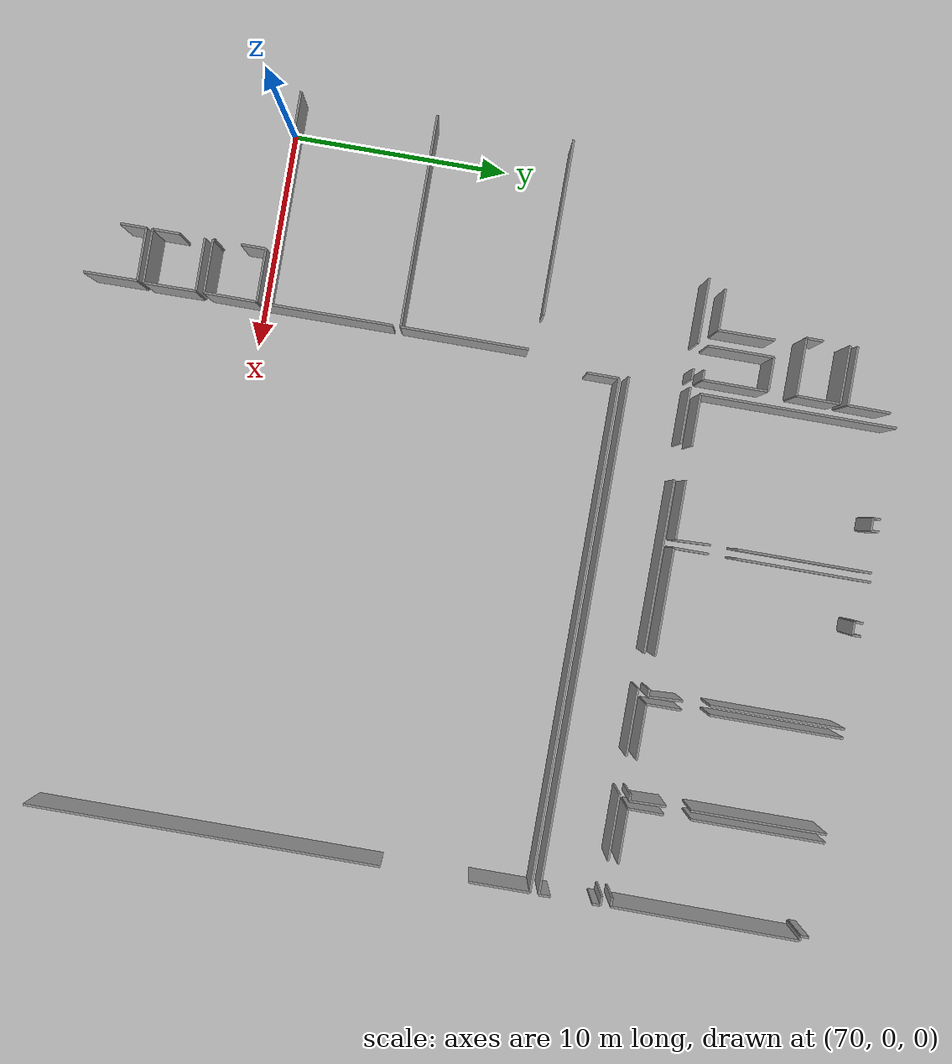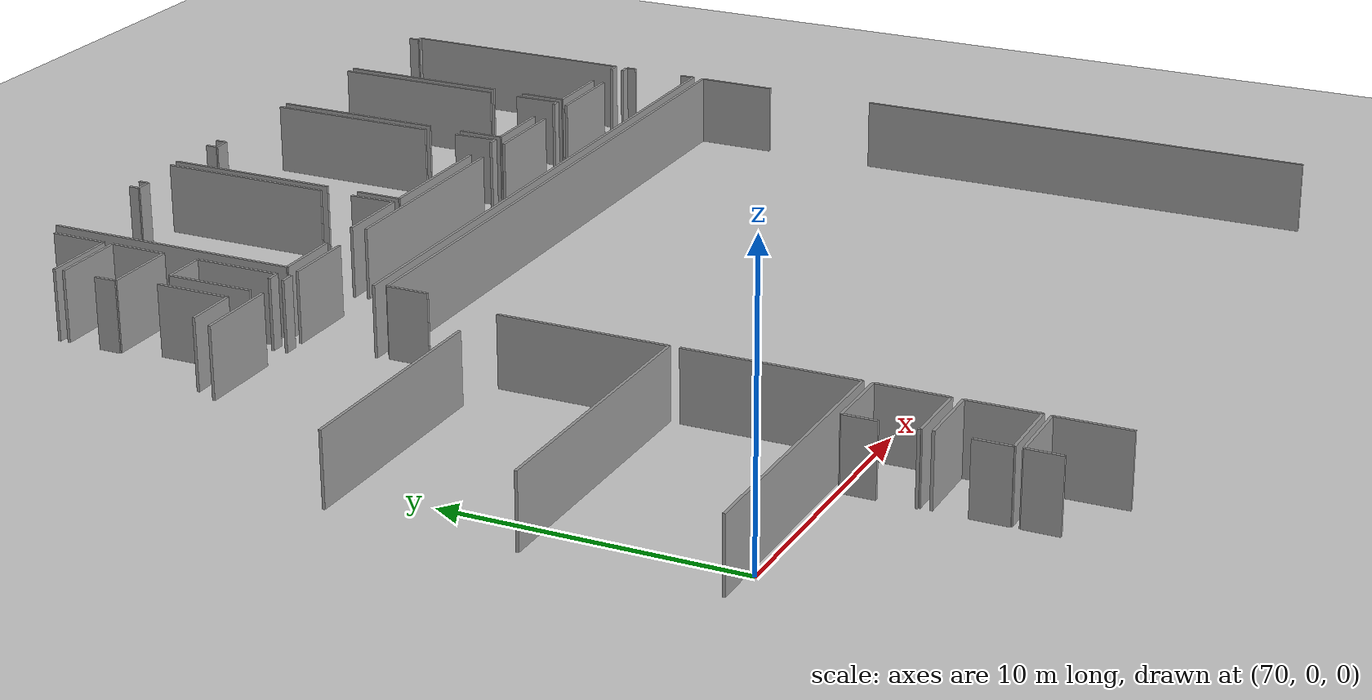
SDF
<sdf version="1.6">
 <world name="default">
  <model name="ground_plane">
   <static>1</static>
   <link name="link">
    <collision name="collision">
     <geometry><plane><normal>0 0 1</normal><size>100 100</size></plane></geometry>
     <surface><friction><ode><mu>100</mu><mu2>50</mu2></ode></friction></surface>
    </collision>
    <visual name="visual">
     <cast_shadows>0</cast_shadows>
     <geometry><plane><normal>0 0 1</normal><size>100 100</size></plane></geometry>
     <material>
      <script><uri>file://media/materials/scripts/gazebo.material</uri><name>Gazebo/Grey</name></script>
     </material>
    </visual>
   </link>
  </model>
  <model name="50010535_PLAN2">
   <static>1</static>
   <link name="Wall_362">
    <collision name="Wall_362_Collision">
     <geometry><box><size>0.492493789826 0.1 2.5</size></box></geometry>
     <pose>0.246246894913 0 1.25 0 0 0</pose>
    </collision>
    <visual name="Wall_362_Visual">
     <pose>0.246246894913 0 1.25 0 0 0</pose>
     <geometry><box><size>0.492493789826 0.1 2.5</size></box></geometry>
     <material>
      <script><uri>file://media/materials/scripts/gazebo.material</uri><name>Gazebo/Grey</name></script>
      <ambient>1 1 1 1</ambient>
     </material>
    </visual>
    <pose>180.991493174 -9.77793307624 0 0 0 3.14159265359</pose>
   </link>
   <link name="Wall_363">
    <collision name="Wall_363_Collision">
     <geometry><box><size>2.99765569907 0.1 2.5</size></box></geometry>
     <pose>1.49882784953 0 1.25 0 0 0</pose>
    </collision>
    <visual name="Wall_363_Visual">
     <pose>1.49882784953 0 1.25 0 0 0</pose>
     <geometry><box><size>2.99765569907 0.1 2.5</size></box></geometry>
     <material>
      <script><uri>file://media/materials/scripts/gazebo.material</uri><name>Gazebo/Grey</name></script>
      <ambient>1 1 1 1</ambient>
     </material>
    </visual>
    <pose>179.326213605 -9.77793307624 0 0 0 3.14159265359</pose>
   </link>
   <link name="Wall_381">
    <collision name="Wall_381_Collision">
     <geometry><box><size>1.88865523529 0.1 2.5</size></box></geometry>
     <pose>0.944327617644 0 1.25 0 0 0</pose>
    </collision>
    <visual name="Wall_381_Visual">
     <pose>0.944327617644 0 1.25 0 0 0</pose>
     <geometry><box><size>1.88865523529 0.1 2.5</size></box></geometry>
     <material>
      <script><uri>file://media/materials/scripts/gazebo.material</uri><name>Gazebo/Grey</name></script>
      <ambient>1 1 1 1</ambient>
     </material>
    </visual>
    <pose>178.579595052 -8.96549621036 0 0 0 3.14159265359</pose>
   </link>
   <link name="Wall_385">
    <collision name="Wall_385_Collision">
     <geometry><box><size>2.60978657106 0.1 2.5</size></box></geometry>
     <pose>1.30489328553 0 1.25 0 0 0</pose>
    </collision>
    <visual name="Wall_385_Visual">
     <pose>1.30489328553 0 1.25 0 0 0</pose>
     <geometry><box><size>2.60978657106 0.1 2.5</size></box></geometry>
     <material>
      <script><uri>file://media/materials/scripts/gazebo.material</uri><name>Gazebo/Grey</name></script>
      <ambient>1 1 1 1</ambient>
     </material>
    </visual>
    <pose>178.57679968 -6.35571113638 0 0 0 -1.5697252151</pose>
   </link>
   <link name="Wall_394">
    <collision name="Wall_394_Collision">
     <geometry><box><size>0.454883324968 0.1 2.5</size></box></geometry>
     <pose>0.227441662484 0 1.25 0 0 0</pose>
    </collision>
    <visual name="Wall_394_Visual">
     <pose>0.227441662484 0 1.25 0 0 0</pose>
     <geometry><box><size>0.454883324968 0.1 2.5</size></box></geometry>
     <material>
      <script><uri>file://media/materials/scripts/gazebo.material</uri><name>Gazebo/Grey</name></script>
      <ambient>1 1 1 1</ambient>
     </material>
    </visual>
    <pose>180.925928985 -9.29026765691 0 0 0 3.14159265359</pose>
   </link>
   <link name="Wall_395">
    <collision name="Wall_395_Collision">
     <geometry><box><size>3.01971372845 0.1 2.5</size></box></geometry>
     <pose>1.50985686423 0 1.25 0 0 0</pose>
    </collision>
    <visual name="Wall_395_Visual">
     <pose>1.50985686423 0 1.25 0 0 0</pose>
     <geometry><box><size>3.01971372845 0.1 2.5</size></box></geometry>
     <material>
      <script><uri>file://media/materials/scripts/gazebo.material</uri><name>Gazebo/Grey</name></script>
      <ambient>1 1 1 1</ambient>
     </material>
    </visual>
    <pose>179.356962701 -9.29026765691 0 0 0 1.57079632679</pose>
   </link>
   <link name="Wall_396">
    <collision name="Wall_396_Collision">
     <geometry><box><size>1.568966284 0.1 2.5</size></box></geometry>
     <pose>0.784483141999 0 1.25 0 0 0</pose>
    </collision>
    <visual name="Wall_396_Visual">
     <pose>0.784483141999 0 1.25 0 0 0</pose>
     <geometry><box><size>1.568966284 0.1 2.5</size></box></geometry>
     <material>
      <script><uri>file://media/materials/scripts/gazebo.material</uri><name>Gazebo/Grey</name></script>
      <ambient>1 1 1 1</ambient>
     </material>
    </visual>
    <pose>179.356962701 -6.27055392845 0 0 0 0.0</pose>
   </link>
   <link name="Wall_397">
    <collision name="Wall_397_Collision">
     <geometry><box><size>3.01971372845 0.1 2.5</size></box></geometry>
     <pose>1.50985686423 0 1.25 0 0 0</pose>
    </collision>
    <visual name="Wall_397_Visual">
     <pose>1.50985686423 0 1.25 0 0 0</pose>
     <geometry><box><size>3.01971372845 0.1 2.5</size></box></geometry>
     <material>
      <script><uri>file://media/materials/scripts/gazebo.material</uri><name>Gazebo/Grey</name></script>
      <ambient>1 1 1 1</ambient>
     </material>
    </visual>
    <pose>180.925928985 -6.27055392845 0 0 0 -1.57079632679</pose>
   </link>
   <link name="Wall_398">
    <collision name="Wall_398_Collision">
     <geometry><box><size>2.70693697071 0.1 2.5</size></box></geometry>
     <pose>1.35346848535 0 1.25 0 0 0</pose>
    </collision>
    <visual name="Wall_398_Visual">
     <pose>1.35346848535 0 1.25 0 0 0</pose>
     <geometry><box><size>2.70693697071 0.1 2.5</size></box></geometry>
     <material>
      <script><uri>file://media/materials/scripts/gazebo.material</uri><name>Gazebo/Grey</name></script>
      <ambient>1 1 1 1</ambient>
     </material>
    </visual>
    <pose>180.927707858 -2.6036606672 0 0 0 3.14159265359</pose>
   </link>
   <link name="Wall_401">
    <collision name="Wall_401_Collision">
     <geometry><box><size>1.98086261176 0.1 2.5</size></box></geometry>
     <pose>0.99043130588 0 1.25 0 0 0</pose>
    </collision>
    <visual name="Wall_401_Visual">
     <pose>0.99043130588 0 1.25 0 0 0</pose>
     <geometry><box><size>1.98086261176 0.1 2.5</size></box></geometry>
     <material>
      <script><uri>file://media/materials/scripts/gazebo.material</uri><name>Gazebo/Grey</name></script>
      <ambient>1 1 1 1</ambient>
     </material>
    </visual>
    <pose>180.951087336 -0.622936030444 0 0 0 -1.5825992761</pose>
   </link>
   <link name="Wall_402">
    <collision name="Wall_402_Collision">
     <geometry><box><size>2.65865326582 0.1 2.5</size></box></geometry>
     <pose>1.32932663291 0 1.25 0 0 0</pose>
    </collision>
    <visual name="Wall_402_Visual">
     <pose>1.32932663291 0 1.25 0 0 0</pose>
     <geometry><box><size>2.65865326582 0.1 2.5</size></box></geometry>
     <material>
      <script><uri>file://media/materials/scripts/gazebo.material</uri><name>Gazebo/Grey</name></script>
      <ambient>1 1 1 1</ambient>
     </material>
    </visual>
    <pose>180.905599004 -4.96590280998 0 0 0 3.14159265359</pose>
   </link>
   <link name="Wall_403">
    <collision name="Wall_403_Collision">
     <geometry><box><size>0.780035958654 0.1 2.5</size></box></geometry>
     <pose>0.390017979327 0 1.25 0 0 0</pose>
    </collision>
    <visual name="Wall_403_Visual">
     <pose>0.390017979327 0 1.25 0 0 0</pose>
     <geometry><box><size>0.780035958654 0.1 2.5</size></box></geometry>
     <material>
      <script><uri>file://media/materials/scripts/gazebo.material</uri><name>Gazebo/Grey</name></script>
      <ambient>1 1 1 1</ambient>
     </material>
    </visual>
    <pose>178.246945738 -4.96590280998 0 0 0 1.57079632679</pose>
   </link>
   <link name="Wall_404">
    <collision name="Wall_404_Collision">
     <geometry><box><size>2.67898324683 0.1 2.5</size></box></geometry>
     <pose>1.33949162341 0 1.25 0 0 0</pose>
    </collision>
    <visual name="Wall_404_Visual">
     <pose>1.33949162341 0 1.25 0 0 0</pose>
     <geometry><box><size>2.67898324683 0.1 2.5</size></box></geometry>
     <material>
      <script><uri>file://media/materials/scripts/gazebo.material</uri><name>Gazebo/Grey</name></script>
      <ambient>1 1 1 1</ambient>
     </material>
    </visual>
    <pose>178.246945738 -2.94766935827 0 0 0 0.0</pose>
   </link>
   <link name="Wall_405">
    <collision name="Wall_405_Collision">
     <geometry><box><size>2.01833584265 0.1 2.5</size></box></geometry>
     <pose>1.00916792133 0 1.25 0 0 0</pose>
    </collision>
    <visual name="Wall_405_Visual">
     <pose>1.00916792133 0 1.25 0 0 0</pose>
     <geometry><box><size>2.01833584265 0.1 2.5</size></box></geometry>
     <material>
      <script><uri>file://media/materials/scripts/gazebo.material</uri><name>Gazebo/Grey</name></script>
      <ambient>1 1 1 1</ambient>
     </material>
    </visual>
    <pose>180.925928985 -2.94766935827 0 0 0 -1.58086914241</pose>
   </link>
   <link name="Wall_406">
    <collision name="Wall_406_Collision">
     <geometry><box><size>23.8506254646 0.1 2.5</size></box></geometry>
     <pose>11.9253127323 0 1.25 0 0 0</pose>
    </collision>
    <visual name="Wall_406_Visual">
     <pose>11.9253127323 0 1.25 0 0 0</pose>
     <geometry><box><size>23.8506254646 0.1 2.5</size></box></geometry>
     <material>
      <script><uri>file://media/materials/scripts/gazebo.material</uri><name>Gazebo/Grey</name></script>
      <ambient>1 1 1 1</ambient>
     </material>
    </visual>
    <pose>205.205517049 -12.6083746815 0 0 0 3.14159265359</pose>
   </link>
   <link name="Wall_407">
    <collision name="Wall_407_Collision">
     <geometry><box><size>2.58622770849 0.1 2.5</size></box></geometry>
     <pose>1.29311385425 0 1.25 0 0 0</pose>
    </collision>
    <visual name="Wall_407_Visual">
     <pose>1.29311385425 0 1.25 0 0 0</pose>
     <geometry><box><size>2.58622770849 0.1 2.5</size></box></geometry>
     <material>
      <script><uri>file://media/materials/scripts/gazebo.material</uri><name>Gazebo/Grey</name></script>
      <ambient>1 1 1 1</ambient>
     </material>
    </visual>
    <pose>181.354891584 -9.77920370006 0 0 0 0.0</pose>
   </link>
   <link name="Wall_408">
    <collision name="Wall_408_Collision">
     <geometry><box><size>7.99349440608 0.1 2.5</size></box></geometry>
     <pose>3.99674720304 0 1.25 0 0 0</pose>
    </collision>
    <visual name="Wall_408_Visual">
     <pose>3.99674720304 0 1.25 0 0 0</pose>
     <geometry><box><size>7.99349440608 0.1 2.5</size></box></geometry>
     <material>
      <script><uri>file://media/materials/scripts/gazebo.material</uri><name>Gazebo/Grey</name></script>
      <ambient>1 1 1 1</ambient>
     </material>
    </visual>
    <pose>185.609702483 -9.77920370006 0 0 0 0.0</pose>
   </link>
   <link name="Wall_409">
    <collision name="Wall_409_Collision">
     <geometry><box><size>3.15114705565 0.1 2.5</size></box></geometry>
     <pose>1.57557352782 0 1.25 0 0 0</pose>
    </collision>
    <visual name="Wall_409_Visual">
     <pose>1.57557352782 0 1.25 0 0 0</pose>
     <geometry><box><size>3.15114705565 0.1 2.5</size></box></geometry>
     <material>
      <script><uri>file://media/materials/scripts/gazebo.material</uri><name>Gazebo/Grey</name></script>
      <ambient>1 1 1 1</ambient>
     </material>
    </visual>
    <pose>195.189697782 -9.77920370006 0 0 0 0.0</pose>
   </link>
   <link name="Wall_410">
    <collision name="Wall_410_Collision">
     <geometry><box><size>3.08304161928 0.1 2.5</size></box></geometry>
     <pose>1.54152080964 0 1.25 0 0 0</pose>
    </collision>
    <visual name="Wall_410_Visual">
     <pose>1.54152080964 0 1.25 0 0 0</pose>
     <geometry><box><size>3.08304161928 0.1 2.5</size></box></geometry>
     <material>
      <script><uri>file://media/materials/scripts/gazebo.material</uri><name>Gazebo/Grey</name></script>
      <ambient>1 1 1 1</ambient>
     </material>
    </visual>
    <pose>200.070163847 -9.77920370006 0 0 0 0.0</pose>
   </link>
   <link name="Wall_411">
    <collision name="Wall_411_Collision">
     <geometry><box><size>0.422863604887 0.1 2.5</size></box></geometry>
     <pose>0.211431802443 0 1.25 0 0 0</pose>
    </collision>
    <visual name="Wall_411_Visual">
     <pose>0.211431802443 0 1.25 0 0 0</pose>
     <geometry><box><size>0.422863604887 0.1 2.5</size></box></geometry>
     <material>
      <script><uri>file://media/materials/scripts/gazebo.material</uri><name>Gazebo/Grey</name></script>
      <ambient>1 1 1 1</ambient>
     </material>
    </visual>
    <pose>204.767405958 -9.77920370006 0 0 0 0.0</pose>
   </link>
   <link name="Wall_412">
    <collision name="Wall_412_Collision">
     <geometry><box><size>0.381187143828 0.1 2.5</size></box></geometry>
     <pose>0.190593571914 0 1.25 0 0 0</pose>
    </collision>
    <visual name="Wall_412_Visual">
     <pose>0.190593571914 0 1.25 0 0 0</pose>
     <geometry><box><size>0.381187143828 0.1 2.5</size></box></geometry>
     <material>
      <script><uri>file://media/materials/scripts/gazebo.material</uri><name>Gazebo/Grey</name></script>
      <ambient>1 1 1 1</ambient>
     </material>
    </visual>
    <pose>205.190269563 -9.77920370006 0 0 0 -1.57079632679</pose>
   </link>
   <link name="Wall_413">
    <collision name="Wall_413_Collision">
     <geometry><box><size>0.526259190143 0.1 2.5</size></box></geometry>
     <pose>0.263129595071 0 1.25 0 0 0</pose>
    </collision>
    <visual name="Wall_413_Visual">
     <pose>0.263129595071 0 1.25 0 0 0</pose>
     <geometry><box><size>0.526259190143 0.1 2.5</size></box></geometry>
     <material>
      <script><uri>file://media/materials/scripts/gazebo.material</uri><name>Gazebo/Grey</name></script>
      <ambient>1 1 1 1</ambient>
     </material>
    </visual>
    <pose>205.190269563 -12.0823364231 0 0 0 -1.54181893294</pose>
   </link>
   <link name="Wall_414">
    <collision name="Wall_414_Collision">
     <geometry><box><size>2.76360679275 0.1 2.5</size></box></geometry>
     <pose>1.38180339638 0 1.25 0 0 0</pose>
    </collision>
    <visual name="Wall_414_Visual">
     <pose>1.38180339638 0 1.25 0 0 0</pose>
     <geometry><box><size>2.76360679275 0.1 2.5</size></box></geometry>
     <material>
      <script><uri>file://media/materials/scripts/gazebo.material</uri><name>Gazebo/Grey</name></script>
      <ambient>1 1 1 1</ambient>
     </material>
    </visual>
    <pose>188.302916717 -9.26612580446 0 0 0 3.14159265359</pose>
   </link>
   <link name="Wall_415">
    <collision name="Wall_415_Collision">
     <geometry><box><size>2.39538001182 0.1 2.5</size></box></geometry>
     <pose>1.19769000591 0 1.25 0 0 0</pose>
    </collision>
    <visual name="Wall_415_Visual">
     <pose>1.19769000591 0 1.25 0 0 0</pose>
     <geometry><box><size>2.39538001182 0.1 2.5</size></box></geometry>
     <material>
      <script><uri>file://media/materials/scripts/gazebo.material</uri><name>Gazebo/Grey</name></script>
      <ambient>1 1 1 1</ambient>
     </material>
    </visual>
    <pose>183.969581266 -9.26612580446 0 0 0 3.14159265359</pose>
   </link>
   <link name="Wall_416">
    <collision name="Wall_416_Collision">
     <geometry><box><size>9.03296633482 0.1 2.5</size></box></geometry>
     <pose>4.51648316741 0 1.25 0 0 0</pose>
    </collision>
    <visual name="Wall_416_Visual">
     <pose>4.51648316741 0 1.25 0 0 0</pose>
     <geometry><box><size>9.03296633482 0.1 2.5</size></box></geometry>
     <material>
      <script><uri>file://media/materials/scripts/gazebo.material</uri><name>Gazebo/Grey</name></script>
      <ambient>1 1 1 1</ambient>
     </material>
    </visual>
    <pose>181.574201254 -9.26612580446 0 0 0 1.57079632679</pose>
   </link>
   <link name="Wall_417">
    <collision name="Wall_417_Collision">
     <geometry><box><size>0.363245935592 0.1 2.5</size></box></geometry>
     <pose>0.181622967796 0 1.25 0 0 0</pose>
    </collision>
    <visual name="Wall_417_Visual">
     <pose>0.181622967796 0 1.25 0 0 0</pose>
     <geometry><box><size>0.363245935592 0.1 2.5</size></box></geometry>
     <material>
      <script><uri>file://media/materials/scripts/gazebo.material</uri><name>Gazebo/Grey</name></script>
      <ambient>1 1 1 1</ambient>
     </material>
    </visual>
    <pose>185.786319193 -0.233159469642 0 0 0 -1.57079632679</pose>
   </link>
   <link name="Wall_418">
    <collision name="Wall_418_Collision">
     <geometry><box><size>0.566698220491 0.1 2.5</size></box></geometry>
     <pose>0.283349110246 0 1.25 0 0 0</pose>
    </collision>
    <visual name="Wall_418_Visual">
     <pose>0.283349110246 0 1.25 0 0 0</pose>
     <geometry><box><size>0.566698220491 0.1 2.5</size></box></geometry>
     <material>
      <script><uri>file://media/materials/scripts/gazebo.material</uri><name>Gazebo/Grey</name></script>
      <ambient>1 1 1 1</ambient>
     </material>
    </visual>
    <pose>185.786319193 -0.596405405234 0 0 0 0.0</pose>
   </link>
   <link name="Wall_419">
    <collision name="Wall_419_Collision">
     <geometry><box><size>0.363245935592 0.1 2.5</size></box></geometry>
     <pose>0.181622967796 0 1.25 0 0 0</pose>
    </collision>
    <visual name="Wall_419_Visual">
     <pose>0.181622967796 0 1.25 0 0 0</pose>
     <geometry><box><size>0.363245935592 0.1 2.5</size></box></geometry>
     <material>
      <script><uri>file://media/materials/scripts/gazebo.material</uri><name>Gazebo/Grey</name></script>
      <ambient>1 1 1 1</ambient>
     </material>
    </visual>
    <pose>186.353017414 -0.596405405234 0 0 0 1.57079632679</pose>
   </link>
   <link name="Wall_420">
    <collision name="Wall_420_Collision">
     <geometry><box><size>6.18018716289 0.1 2.5</size></box></geometry>
     <pose>3.09009358144 0 1.25 0 0 0</pose>
    </collision>
    <visual name="Wall_420_Visual">
     <pose>3.09009358144 0 1.25 0 0 0</pose>
     <geometry><box><size>6.18018716289 0.1 2.5</size></box></geometry>
     <material>
      <script><uri>file://media/materials/scripts/gazebo.material</uri><name>Gazebo/Grey</name></script>
      <ambient>1 1 1 1</ambient>
     </material>
    </visual>
    <pose>188.241926774 -0.233159469642 0 0 0 -1.57079632679</pose>
   </link>
   <link name="Wall_421">
    <collision name="Wall_421_Collision">
     <geometry><box><size>1.62754164001 0.1 2.5</size></box></geometry>
     <pose>0.813770820007 0 1.25 0 0 0</pose>
    </collision>
    <visual name="Wall_421_Visual">
     <pose>0.813770820007 0 1.25 0 0 0</pose>
     <geometry><box><size>1.62754164001 0.1 2.5</size></box></geometry>
     <material>
      <script><uri>file://media/materials/scripts/gazebo.material</uri><name>Gazebo/Grey</name></script>
      <ambient>1 1 1 1</ambient>
     </material>
    </visual>
    <pose>188.241926774 -7.63972732413 0 0 0 -1.5333138901</pose>
   </link>
   <link name="Wall_422">
    <collision name="Wall_422_Collision">
     <geometry><box><size>0.350946297085 0.1 2.5</size></box></geometry>
     <pose>0.175473148542 0 1.25 0 0 0</pose>
    </collision>
    <visual name="Wall_422_Visual">
     <pose>0.175473148542 0 1.25 0 0 0</pose>
     <geometry><box><size>0.350946297085 0.1 2.5</size></box></geometry>
     <material>
      <script><uri>file://media/materials/scripts/gazebo.material</uri><name>Gazebo/Grey</name></script>
      <ambient>1 1 1 1</ambient>
     </material>
    </visual>
    <pose>195.514723353 -9.27070005019 0 0 0 3.14159265359</pose>
   </link>
   <link name="Wall_423">
    <collision name="Wall_423_Collision">
     <geometry><box><size>4.99761758035 0.1 2.5</size></box></geometry>
     <pose>2.49880879018 0 1.25 0 0 0</pose>
    </collision>
    <visual name="Wall_423_Visual">
     <pose>2.49880879018 0 1.25 0 0 0</pose>
     <geometry><box><size>4.99761758035 0.1 2.5</size></box></geometry>
     <material>
      <script><uri>file://media/materials/scripts/gazebo.material</uri><name>Gazebo/Grey</name></script>
      <ambient>1 1 1 1</ambient>
     </material>
    </visual>
    <pose>193.660883211 -9.27070005019 0 0 0 3.14159265359</pose>
   </link>
   <link name="Wall_424">
    <collision name="Wall_424_Collision">
     <geometry><box><size>1.62741497938 0.1 2.5</size></box></geometry>
     <pose>0.813707489692 0 1.25 0 0 0</pose>
    </collision>
    <visual name="Wall_424_Visual">
     <pose>0.813707489692 0 1.25 0 0 0</pose>
     <geometry><box><size>1.62741497938 0.1 2.5</size></box></geometry>
     <material>
      <script><uri>file://media/materials/scripts/gazebo.material</uri><name>Gazebo/Grey</name></script>
      <ambient>1 1 1 1</ambient>
     </material>
    </visual>
    <pose>188.66326563 -9.27070005019 0 0 0 1.57079632679</pose>
   </link>
   <link name="Wall_425">
    <collision name="Wall_425_Collision">
     <geometry><box><size>6.22463358386 0.1 2.5</size></box></geometry>
     <pose>3.11231679193 0 1.25 0 0 0</pose>
    </collision>
    <visual name="Wall_425_Visual">
     <pose>3.11231679193 0 1.25 0 0 0</pose>
     <geometry><box><size>6.22463358386 0.1 2.5</size></box></geometry>
     <material>
      <script><uri>file://media/materials/scripts/gazebo.material</uri><name>Gazebo/Grey</name></script>
      <ambient>1 1 1 1</ambient>
     </material>
    </visual>
    <pose>188.66326563 -6.43479476249 0 0 0 1.57079632679</pose>
   </link>
   <link name="Wall_426">
    <collision name="Wall_426_Collision">
     <geometry><box><size>0.410818091142 0.1 2.5</size></box></geometry>
     <pose>0.205409045571 0 1.25 0 0 0</pose>
    </collision>
    <visual name="Wall_426_Visual">
     <pose>0.205409045571 0 1.25 0 0 0</pose>
     <geometry><box><size>0.410818091142 0.1 2.5</size></box></geometry>
     <material>
      <script><uri>file://media/materials/scripts/gazebo.material</uri><name>Gazebo/Grey</name></script>
      <ambient>1 1 1 1</ambient>
     </material>
    </visual>
    <pose>190.559290484 -0.210161178631 0 0 0 -1.57079632679</pose>
   </link>
   <link name="Wall_427">
    <collision name="Wall_427_Collision">
     <geometry><box><size>0.602021562486 0.1 2.5</size></box></geometry>
     <pose>0.301010781243 0 1.25 0 0 0</pose>
    </collision>
    <visual name="Wall_427_Visual">
     <pose>0.301010781243 0 1.25 0 0 0</pose>
     <geometry><box><size>0.602021562486 0.1 2.5</size></box></geometry>
     <material>
      <script><uri>file://media/materials/scripts/gazebo.material</uri><name>Gazebo/Grey</name></script>
      <ambient>1 1 1 1</ambient>
     </material>
    </visual>
    <pose>190.559290484 -0.620979269772 0 0 0 0.0</pose>
   </link>
   <link name="Wall_428">
    <collision name="Wall_428_Collision">
     <geometry><box><size>0.40126300007 0.1 2.5</size></box></geometry>
     <pose>0.200631500035 0 1.25 0 0 0</pose>
    </collision>
    <visual name="Wall_428_Visual">
     <pose>0.200631500035 0 1.25 0 0 0</pose>
     <geometry><box><size>0.40126300007 0.1 2.5</size></box></geometry>
     <material>
      <script><uri>file://media/materials/scripts/gazebo.material</uri><name>Gazebo/Grey</name></script>
      <ambient>1 1 1 1</ambient>
     </material>
    </visual>
    <pose>191.161312046 -0.620979269772 0 0 0 1.57079632679</pose>
   </link>
   <link name="Wall_429">
    <collision name="Wall_429_Collision">
     <geometry><box><size>6.20244849209 0.1 2.5</size></box></geometry>
     <pose>3.10122424604 0 1.25 0 0 0</pose>
    </collision>
    <visual name="Wall_429_Visual">
     <pose>3.10122424604 0 1.25 0 0 0</pose>
     <geometry><box><size>6.20244849209 0.1 2.5</size></box></geometry>
     <material>
      <script><uri>file://media/materials/scripts/gazebo.material</uri><name>Gazebo/Grey</name></script>
      <ambient>1 1 1 1</ambient>
     </material>
    </visual>
    <pose>195.431624556 -0.219716269703 0 0 0 -1.57079632679</pose>
   </link>
   <link name="Wall_430">
    <collision name="Wall_430_Collision">
     <geometry><box><size>1.60060333923 0.1 2.5</size></box></geometry>
     <pose>0.800301669615 0 1.25 0 0 0</pose>
    </collision>
    <visual name="Wall_430_Visual">
     <pose>0.800301669615 0 1.25 0 0 0</pose>
     <geometry><box><size>1.60060333923 0.1 2.5</size></box></geometry>
     <material>
      <script><uri>file://media/materials/scripts/gazebo.material</uri><name>Gazebo/Grey</name></script>
      <ambient>1 1 1 1</ambient>
     </material>
    </visual>
    <pose>195.431624556 -7.67225529374 0 0 0 -1.51885580454</pose>
   </link>
   <link name="Wall_431">
    <collision name="Wall_431_Collision">
     <geometry><box><size>0.31867245224 0.1 2.5</size></box></geometry>
     <pose>0.15933622612 0 1.25 0 0 0</pose>
    </collision>
    <visual name="Wall_431_Visual">
     <pose>0.15933622612 0 1.25 0 0 0</pose>
     <geometry><box><size>0.31867245224 0.1 2.5</size></box></geometry>
     <material>
      <script><uri>file://media/materials/scripts/gazebo.material</uri><name>Gazebo/Grey</name></script>
      <ambient>1 1 1 1</ambient>
     </material>
    </visual>
    <pose>200.3077705 -9.29458777787 0 0 0 3.14159265359</pose>
   </link>
   <link name="Wall_432">
    <collision name="Wall_432_Collision">
     <geometry><box><size>2.57479209418 0.1 2.5</size></box></geometry>
     <pose>1.28739604709 0 1.25 0 0 0</pose>
    </collision>
    <visual name="Wall_432_Visual">
     <pose>1.28739604709 0 1.25 0 0 0</pose>
     <geometry><box><size>2.57479209418 0.1 2.5</size></box></geometry>
     <material>
      <script><uri>file://media/materials/scripts/gazebo.material</uri><name>Gazebo/Grey</name></script>
      <ambient>1 1 1 1</ambient>
     </material>
    </visual>
    <pose>198.426230758 -9.29458777787 0 0 0 3.14159265359</pose>
   </link>
   <link name="Wall_433">
    <collision name="Wall_433_Collision">
     <geometry><box><size>1.63224334987 0.1 2.5</size></box></geometry>
     <pose>0.816121674936 0 1.25 0 0 0</pose>
    </collision>
    <visual name="Wall_433_Visual">
     <pose>0.816121674936 0 1.25 0 0 0</pose>
     <geometry><box><size>1.63224334987 0.1 2.5</size></box></geometry>
     <material>
      <script><uri>file://media/materials/scripts/gazebo.material</uri><name>Gazebo/Grey</name></script>
      <ambient>1 1 1 1</ambient>
     </material>
    </visual>
    <pose>195.851438664 -9.29458777787 0 0 0 1.57079632679</pose>
   </link>
   <link name="Wall_434">
    <collision name="Wall_434_Collision">
     <geometry><box><size>6.16257631684 0.1 2.5</size></box></geometry>
     <pose>3.08128815842 0 1.25 0 0 0</pose>
    </collision>
    <visual name="Wall_434_Visual">
     <pose>3.08128815842 0 1.25 0 0 0</pose>
     <geometry><box><size>6.16257631684 0.1 2.5</size></box></geometry>
     <material>
      <script><uri>file://media/materials/scripts/gazebo.material</uri><name>Gazebo/Grey</name></script>
      <ambient>1 1 1 1</ambient>
     </material>
    </visual>
    <pose>195.851438664 -6.37682890415 0 0 0 1.57079632679</pose>
   </link>
   <link name="Wall_435">
    <collision name="Wall_435_Collision">
     <geometry><box><size>6.25212988317 0.1 2.5</size></box></geometry>
     <pose>3.12606494158 0 1.25 0 0 0</pose>
    </collision>
    <visual name="Wall_435_Visual">
     <pose>3.12606494158 0 1.25 0 0 0</pose>
     <geometry><box><size>6.25212988317 0.1 2.5</size></box></geometry>
     <material>
      <script><uri>file://media/materials/scripts/gazebo.material</uri><name>Gazebo/Grey</name></script>
      <ambient>1 1 1 1</ambient>
     </material>
    </visual>
    <pose>200.269397661 -0.214252587308 0 0 0 -1.57079632679</pose>
   </link>
   <link name="Wall_436">
    <collision name="Wall_436_Collision">
     <geometry><box><size>1.69031446453 0.1 2.5</size></box></geometry>
     <pose>0.845157232266 0 1.25 0 0 0</pose>
    </collision>
    <visual name="Wall_436_Visual">
     <pose>0.845157232266 0 1.25 0 0 0</pose>
     <geometry><box><size>1.69031446453 0.1 2.5</size></box></geometry>
     <material>
      <script><uri>file://media/materials/scripts/gazebo.material</uri><name>Gazebo/Grey</name></script>
      <ambient>1 1 1 1</ambient>
     </material>
    </visual>
    <pose>200.269397661 -7.60470893185 0 0 0 -1.54809277861</pose>
   </link>
   <link name="Wall_437">
    <collision name="Wall_437_Collision">
     <geometry><box><size>0.391606259093 0.1 2.5</size></box></geometry>
     <pose>0.195803129546 0 1.25 0 0 0</pose>
    </collision>
    <visual name="Wall_437_Visual">
     <pose>0.195803129546 0 1.25 0 0 0</pose>
     <geometry><box><size>0.391606259093 0.1 2.5</size></box></geometry>
     <material>
      <script><uri>file://media/materials/scripts/gazebo.material</uri><name>Gazebo/Grey</name></script>
      <ambient>1 1 1 1</ambient>
     </material>
    </visual>
    <pose>205.17146433 -9.30271977027 0 0 0 3.14159265359</pose>
   </link>
   <link name="Wall_438">
    <collision name="Wall_438_Collision">
     <geometry><box><size>2.54658424554 0.1 2.5</size></box></geometry>
     <pose>1.27329212277 0 1.25 0 0 0</pose>
    </collision>
    <visual name="Wall_438_Visual">
     <pose>1.27329212277 0 1.25 0 0 0</pose>
     <geometry><box><size>2.54658424554 0.1 2.5</size></box></geometry>
     <material>
      <script><uri>file://media/materials/scripts/gazebo.material</uri><name>Gazebo/Grey</name></script>
      <ambient>1 1 1 1</ambient>
     </material>
    </visual>
    <pose>203.207588165 -9.30271977027 0 0 0 3.14159265359</pose>
   </link>
   <link name="Wall_439">
    <collision name="Wall_439_Collision">
     <geometry><box><size>1.6551145785 0.1 2.5</size></box></geometry>
     <pose>0.827557289251 0 1.25 0 0 0</pose>
    </collision>
    <visual name="Wall_439_Visual">
     <pose>0.827557289251 0 1.25 0 0 0</pose>
     <geometry><box><size>1.6551145785 0.1 2.5</size></box></geometry>
     <material>
      <script><uri>file://media/materials/scripts/gazebo.material</uri><name>Gazebo/Grey</name></script>
      <ambient>1 1 1 1</ambient>
     </material>
    </visual>
    <pose>200.66100392 -9.30271977027 0 0 0 1.57079632679</pose>
   </link>
   <link name="Wall_440">
    <collision name="Wall_440_Collision">
     <geometry><box><size>6.18964060405 0.1 2.5</size></box></geometry>
     <pose>3.09482030203 0 1.25 0 0 0</pose>
    </collision>
    <visual name="Wall_440_Visual">
     <pose>3.09482030203 0 1.25 0 0 0</pose>
     <geometry><box><size>6.18964060405 0.1 2.5</size></box></geometry>
     <material>
      <script><uri>file://media/materials/scripts/gazebo.material</uri><name>Gazebo/Grey</name></script>
      <ambient>1 1 1 1</ambient>
     </material>
    </visual>
    <pose>200.66100392 -6.40826413728 0 0 0 1.57079632679</pose>
   </link>
   <link name="Wall_441">
    <collision name="Wall_441_Collision">
     <geometry><box><size>0.37778187201 0.1 2.5</size></box></geometry>
     <pose>0.188890936005 0 1.25 0 0 0</pose>
    </collision>
    <visual name="Wall_441_Visual">
     <pose>0.188890936005 0 1.25 0 0 0</pose>
     <geometry><box><size>0.37778187201 0.1 2.5</size></box></geometry>
     <material>
      <script><uri>file://media/materials/scripts/gazebo.material</uri><name>Gazebo/Grey</name></script>
      <ambient>1 1 1 1</ambient>
     </material>
    </visual>
    <pose>205.009078607 -0.218623533224 0 0 0 -1.57079632679</pose>
   </link>
   <link name="Wall_442">
    <collision name="Wall_442_Collision">
     <geometry><box><size>0.21803904627 0.1 2.5</size></box></geometry>
     <pose>0.109019523135 0 1.25 0 0 0</pose>
    </collision>
    <visual name="Wall_442_Visual">
     <pose>0.109019523135 0 1.25 0 0 0</pose>
     <geometry><box><size>0.21803904627 0.1 2.5</size></box></geometry>
     <material>
      <script><uri>file://media/materials/scripts/gazebo.material</uri><name>Gazebo/Grey</name></script>
      <ambient>1 1 1 1</ambient>
     </material>
    </visual>
    <pose>205.009078607 -0.596405405234 0 0 0 0.0</pose>
   </link>
   <link name="Wall_443">
    <collision name="Wall_443_Collision">
     <geometry><box><size>8.70649223943 0.1 2.5</size></box></geometry>
     <pose>4.35324611971 0 1.25 0 0 0</pose>
    </collision>
    <visual name="Wall_443_Visual">
     <pose>4.35324611971 0 1.25 0 0 0</pose>
     <geometry><box><size>8.70649223943 0.1 2.5</size></box></geometry>
     <material>
      <script><uri>file://media/materials/scripts/gazebo.material</uri><name>Gazebo/Grey</name></script>
      <ambient>1 1 1 1</ambient>
     </material>
    </visual>
    <pose>205.227117653 -0.596405405234 0 0 0 -1.57718853395</pose>
   </link>
   <link name="Wall_472">
    <collision name="Wall_472_Collision">
     <geometry><box><size>9.74898826579 0.1 2.5</size></box></geometry>
     <pose>4.87449413289 0 1.25 0 0 0</pose>
    </collision>
    <visual name="Wall_472_Visual">
     <pose>4.87449413289 0 1.25 0 0 0</pose>
     <geometry><box><size>9.74898826579 0.1 2.5</size></box></geometry>
     <material>
      <script><uri>file://media/materials/scripts/gazebo.material</uri><name>Gazebo/Grey</name></script>
      <ambient>1 1 1 1</ambient>
     </material>
    </visual>
    <pose>180.901787132 -23.2076644028 0 0 0 3.14159265359</pose>
   </link>
   <link name="Wall_475">
    <collision name="Wall_475_Collision">
     <geometry><box><size>5.90001515946 0.1 2.5</size></box></geometry>
     <pose>2.95000757973 0 1.25 0 0 0</pose>
    </collision>
    <visual name="Wall_475_Visual">
     <pose>2.95000757973 0 1.25 0 0 0</pose>
     <geometry><box><size>5.90001515946 0.1 2.5</size></box></geometry>
     <material>
      <script><uri>file://media/materials/scripts/gazebo.material</uri><name>Gazebo/Grey</name></script>
      <ambient>1 1 1 1</ambient>
     </material>
    </visual>
    <pose>180.90432838 -17.3076497907 0 0 0 -1.57122704564</pose>
   </link>
   <link name="Wall_476">
    <collision name="Wall_476_Collision">
     <geometry><box><size>8.05118072718 0.1 2.5</size></box></geometry>
     <pose>4.02559036359 0 1.25 0 0 0</pose>
    </collision>
    <visual name="Wall_476_Visual">
     <pose>4.02559036359 0 1.25 0 0 0</pose>
     <geometry><box><size>8.05118072718 0.1 2.5</size></box></geometry>
     <material>
      <script><uri>file://media/materials/scripts/gazebo.material</uri><name>Gazebo/Grey</name></script>
      <ambient>1 1 1 1</ambient>
     </material>
    </visual>
    <pose>179.249213802 -16.9132481592 0 0 0 3.14159265359</pose>
   </link>
   <link name="Wall_485">
    <collision name="Wall_485_Collision">
     <geometry><box><size>1.47036587613 0.1 2.5</size></box></geometry>
     <pose>0.735182938063 0 1.25 0 0 0</pose>
    </collision>
    <visual name="Wall_485_Visual">
     <pose>0.735182938063 0 1.25 0 0 0</pose>
     <geometry><box><size>1.47036587613 0.1 2.5</size></box></geometry>
     <material>
      <script><uri>file://media/materials/scripts/gazebo.material</uri><name>Gazebo/Grey</name></script>
      <ambient>1 1 1 1</ambient>
     </material>
    </visual>
    <pose>181.502792196 -14.5005876635 0 0 0 1.57079632679</pose>
   </link>
   <link name="Wall_486">
    <collision name="Wall_486_Collision">
     <geometry><box><size>23.6699427584 0.1 2.5</size></box></geometry>
     <pose>11.8349713792 0 1.25 0 0 0</pose>
    </collision>
    <visual name="Wall_486_Visual">
     <pose>11.8349713792 0 1.25 0 0 0</pose>
     <geometry><box><size>23.6699427584 0.1 2.5</size></box></geometry>
     <material>
      <script><uri>file://media/materials/scripts/gazebo.material</uri><name>Gazebo/Grey</name></script>
      <ambient>1 1 1 1</ambient>
     </material>
    </visual>
    <pose>181.502792196 -13.0302217874 0 0 0 0.0</pose>
   </link>
   <link name="Wall_487">
    <collision name="Wall_487_Collision">
     <geometry><box><size>2.8223096129 0.1 2.5</size></box></geometry>
     <pose>1.41115480645 0 1.25 0 0 0</pose>
    </collision>
    <visual name="Wall_487_Visual">
     <pose>1.41115480645 0 1.25 0 0 0</pose>
     <geometry><box><size>2.8223096129 0.1 2.5</size></box></geometry>
     <material>
      <script><uri>file://media/materials/scripts/gazebo.material</uri><name>Gazebo/Grey</name></script>
      <ambient>1 1 1 1</ambient>
     </material>
    </visual>
    <pose>205.172734954 -13.0302217874 0 0 0 -1.57079632679</pose>
   </link>
   <link name="Wall_488">
    <collision name="Wall_488_Collision">
     <geometry><box><size>16.4474628819 0.1 2.5</size></box></geometry>
     <pose>8.22373144095 0 1.25 0 0 0</pose>
    </collision>
    <visual name="Wall_488_Visual">
     <pose>8.22373144095 0 1.25 0 0 0</pose>
     <geometry><box><size>16.4474628819 0.1 2.5</size></box></geometry>
     <material>
      <script><uri>file://media/materials/scripts/gazebo.material</uri><name>Gazebo/Grey</name></script>
      <ambient>1 1 1 1</ambient>
     </material>
    </visual>
    <pose>205.172734954 -19.9063296125 0 0 0 -1.57079632679</pose>
   </link>
   <link name="Wall_490">
    <collision name="Wall_490_Collision">
     <geometry><box><size>9.76601462488 0.1 2.5</size></box></geometry>
     <pose>4.88300731244 0 1.25 0 0 0</pose>
    </collision>
    <visual name="Wall_490_Visual">
     <pose>4.88300731244 0 1.25 0 0 0</pose>
     <geometry><box><size>9.76601462488 0.1 2.5</size></box></geometry>
     <material>
      <script><uri>file://media/materials/scripts/gazebo.material</uri><name>Gazebo/Grey</name></script>
      <ambient>1 1 1 1</ambient>
     </material>
    </visual>
    <pose>180.921100614 -29.4911532817 0 0 0 3.14159265359</pose>
   </link>
   <link name="Wall_494">
    <collision name="Wall_494_Collision">
     <geometry><box><size>5.91834310825 0.1 2.5</size></box></geometry>
     <pose>2.95917155413 0 1.25 0 0 0</pose>
    </collision>
    <visual name="Wall_494_Visual">
     <pose>2.95917155413 0 1.25 0 0 0</pose>
     <geometry><box><size>5.91834310825 0.1 2.5</size></box></geometry>
     <material>
      <script><uri>file://media/materials/scripts/gazebo.material</uri><name>Gazebo/Grey</name></script>
      <ambient>1 1 1 1</ambient>
     </material>
    </visual>
    <pose>180.901787132 -23.5728416866 0 0 0 -1.56753299517</pose>
   </link>
   <link name="Wall_503">
    <collision name="Wall_503_Collision">
     <geometry><box><size>2.43858122145 0.1 2.5</size></box></geometry>
     <pose>1.21929061073 0 1.25 0 0 0</pose>
    </collision>
    <visual name="Wall_503_Visual">
     <pose>1.21929061073 0 1.25 0 0 0</pose>
     <geometry><box><size>2.43858122145 0.1 2.5</size></box></geometry>
     <material>
      <script><uri>file://media/materials/scripts/gazebo.material</uri><name>Gazebo/Grey</name></script>
      <ambient>1 1 1 1</ambient>
     </material>
    </visual>
    <pose>180.900770633 -32.2722946831 0 0 0 3.14159265359</pose>
   </link>
   <link name="Wall_504">
    <collision name="Wall_504_Collision">
     <geometry><box><size>0.101141655496 0.1 2.5</size></box></geometry>
     <pose>0.0505708277479 0 1.25 0 0 0</pose>
    </collision>
    <visual name="Wall_504_Visual">
     <pose>0.0505708277479 0 1.25 0 0 0</pose>
     <geometry><box><size>0.101141655496 0.1 2.5</size></box></geometry>
     <material>
      <script><uri>file://media/materials/scripts/gazebo.material</uri><name>Gazebo/Grey</name></script>
      <ambient>1 1 1 1</ambient>
     </material>
    </visual>
    <pose>178.462189412 -32.2722946831 0 0 0 1.57079632679</pose>
   </link>
   <link name="Wall_505">
    <collision name="Wall_505_Collision">
     <geometry><box><size>1.13695418766 0.1 2.5</size></box></geometry>
     <pose>0.568477093829 0 1.25 0 0 0</pose>
    </collision>
    <visual name="Wall_505_Visual">
     <pose>0.568477093829 0 1.25 0 0 0</pose>
     <geometry><box><size>1.13695418766 0.1 2.5</size></box></geometry>
     <material>
      <script><uri>file://media/materials/scripts/gazebo.material</uri><name>Gazebo/Grey</name></script>
      <ambient>1 1 1 1</ambient>
     </material>
    </visual>
    <pose>178.462189412 -30.9724465226 0 0 0 1.57079632679</pose>
   </link>
   <link name="Wall_506">
    <collision name="Wall_506_Collision">
     <geometry><box><size>2.44823796243 0.1 2.5</size></box></geometry>
     <pose>1.22411898121 0 1.25 0 0 0</pose>
    </collision>
    <visual name="Wall_506_Visual">
     <pose>1.22411898121 0 1.25 0 0 0</pose>
     <geometry><box><size>2.44823796243 0.1 2.5</size></box></geometry>
     <material>
      <script><uri>file://media/materials/scripts/gazebo.material</uri><name>Gazebo/Grey</name></script>
      <ambient>1 1 1 1</ambient>
     </material>
    </visual>
    <pose>178.462189412 -29.835492335 0 0 0 0.0</pose>
   </link>
   <link name="Wall_507">
    <collision name="Wall_507_Collision">
     <geometry><box><size>2.43682148226 0.1 2.5</size></box></geometry>
     <pose>1.21841074113 0 1.25 0 0 0</pose>
    </collision>
    <visual name="Wall_507_Visual">
     <pose>1.21841074113 0 1.25 0 0 0</pose>
     <geometry><box><size>2.43682148226 0.1 2.5</size></box></geometry>
     <material>
      <script><uri>file://media/materials/scripts/gazebo.material</uri><name>Gazebo/Grey</name></script>
      <ambient>1 1 1 1</ambient>
     </material>
    </visual>
    <pose>180.910427374 -29.835492335 0 0 0 -1.57475918018</pose>
   </link>
   <link name="Wall_508">
    <collision name="Wall_508_Collision">
     <geometry><box><size>2.46272307389 0.1 2.5</size></box></geometry>
     <pose>1.23136153695 0 1.25 0 0 0</pose>
    </collision>
    <visual name="Wall_508_Visual">
     <pose>1.23136153695 0 1.25 0 0 0</pose>
     <geometry><box><size>2.46272307389 0.1 2.5</size></box></geometry>
     <material>
      <script><uri>file://media/materials/scripts/gazebo.material</uri><name>Gazebo/Grey</name></script>
      <ambient>1 1 1 1</ambient>
     </material>
    </visual>
    <pose>180.927453733 -35.0580103302 0 0 0 3.14159265359</pose>
   </link>
   <link name="Wall_509">
    <collision name="Wall_509_Collision">
     <geometry><box><size>1.26732019085 0.1 2.5</size></box></geometry>
     <pose>0.633660095424 0 1.25 0 0 0</pose>
    </collision>
    <visual name="Wall_509_Visual">
     <pose>0.633660095424 0 1.25 0 0 0</pose>
     <geometry><box><size>1.26732019085 0.1 2.5</size></box></geometry>
     <material>
      <script><uri>file://media/materials/scripts/gazebo.material</uri><name>Gazebo/Grey</name></script>
      <ambient>1 1 1 1</ambient>
     </material>
    </visual>
    <pose>178.46473066 -35.0580103302 0 0 0 1.57079632679</pose>
   </link>
   <link name="Wall_510">
    <collision name="Wall_510_Collision">
     <geometry><box><size>2.43578584906 0.1 2.5</size></box></geometry>
     <pose>1.21789292453 0 1.25 0 0 0</pose>
    </collision>
    <visual name="Wall_510_Visual">
     <pose>1.21789292453 0 1.25 0 0 0</pose>
     <geometry><box><size>2.43578584906 0.1 2.5</size></box></geometry>
     <material>
      <script><uri>file://media/materials/scripts/gazebo.material</uri><name>Gazebo/Grey</name></script>
      <ambient>1 1 1 1</ambient>
     </material>
    </visual>
    <pose>178.46473066 -32.6443333355 0 0 0 0.0</pose>
   </link>
   <link name="Wall_511">
    <collision name="Wall_511_Collision">
     <geometry><box><size>2.41382730304 0.1 2.5</size></box></geometry>
     <pose>1.20691365152 0 1.25 0 0 0</pose>
    </collision>
    <visual name="Wall_511_Visual">
     <pose>1.20691365152 0 1.25 0 0 0</pose>
     <geometry><box><size>2.41382730304 0.1 2.5</size></box></geometry>
     <material>
      <script><uri>file://media/materials/scripts/gazebo.material</uri><name>Gazebo/Grey</name></script>
      <ambient>1 1 1 1</ambient>
     </material>
    </visual>
    <pose>180.900516509 -32.6443333355 0 0 0 -1.55963654584</pose>
   </link>
   <link name="Wall_527">
    <collision name="Wall_527_Collision">
     <geometry><box><size>1.20836324594 0.1 2.5</size></box></geometry>
     <pose>0.604181622968 0 1.25 0 0 0</pose>
    </collision>
    <visual name="Wall_527_Visual">
     <pose>0.604181622968 0 1.25 0 0 0</pose>
     <geometry><box><size>1.20836324594 0.1 2.5</size></box></geometry>
     <material>
      <script><uri>file://media/materials/scripts/gazebo.material</uri><name>Gazebo/Grey</name></script>
      <ambient>1 1 1 1</ambient>
     </material>
    </visual>
    <pose>178.46473066 -36.5520098092 0 0 0 1.57079632679</pose>
   </link>
   <link name="Wall_528">
    <collision name="Wall_528_Collision">
     <geometry><box><size>2.41901361473 0.1 2.5</size></box></geometry>
     <pose>1.20950680737 0 1.25 0 0 0</pose>
    </collision>
    <visual name="Wall_528_Visual">
     <pose>1.20950680737 0 1.25 0 0 0</pose>
     <geometry><box><size>2.41901361473 0.1 2.5</size></box></geometry>
     <material>
      <script><uri>file://media/materials/scripts/gazebo.material</uri><name>Gazebo/Grey</name></script>
      <ambient>1 1 1 1</ambient>
     </material>
    </visual>
    <pose>178.46473066 -35.3436465633 0 0 0 0.0</pose>
   </link>
   <link name="Wall_529">
    <collision name="Wall_529_Collision">
     <geometry><box><size>2.47887654908 0.1 2.5</size></box></geometry>
     <pose>1.23943827454 0 1.25 0 0 0</pose>
    </collision>
    <visual name="Wall_529_Visual">
     <pose>1.23943827454 0 1.25 0 0 0</pose>
     <geometry><box><size>2.47887654908 0.1 2.5</size></box></geometry>
     <material>
      <script><uri>file://media/materials/scripts/gazebo.material</uri><name>Gazebo/Grey</name></script>
      <ambient>1 1 1 1</ambient>
     </material>
    </visual>
    <pose>180.883744274 -35.3436465633 0 0 0 -1.56003192814</pose>
   </link>
   <pose>-102.6 29.7873404573 0 0 0 0</pose>
  </model>
 </world>
</sdf>
